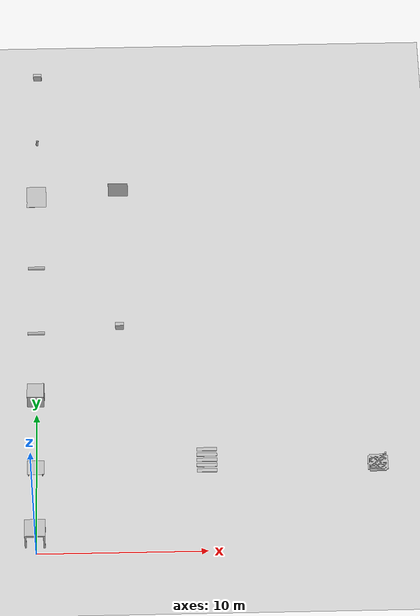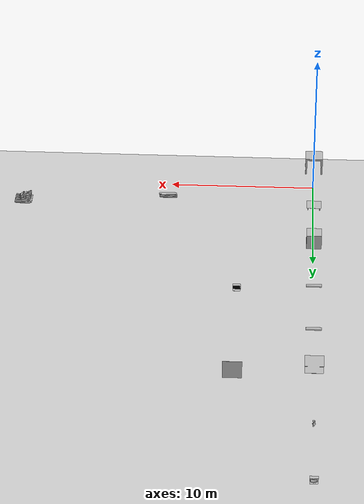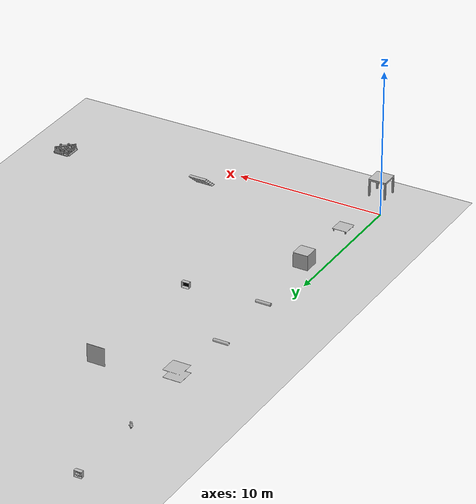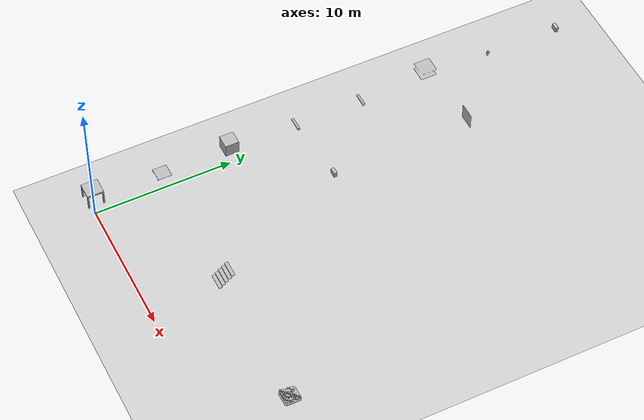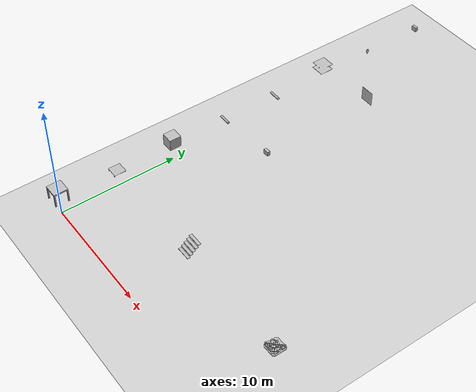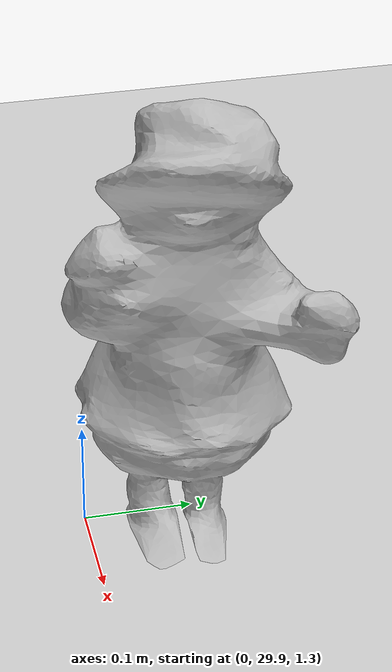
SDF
<sdf version="1.4">
 <world name="default">
  <scene><ambient>0.5 0.5 0.5 1</ambient><background>0.5 0.5 0.5 1</background><shadows>false</shadows></scene>
  <include><uri>model://sun</uri></include>
  <physics type="ode">
   <max_step_size>0.001</max_step_size>
   <real_time_factor>1</real_time_factor>
   <real_time_update_rate>1000</real_time_update_rate>
   <gravity>0 0 -9.81</gravity>
  </physics>
  <light type="directional" name="directional_light_1">
   <cast_shadows>false</cast_shadows>
   <pose>0 0 30 0.1 0.1 0</pose>
   <diffuse>.5 .5 .5 1</diffuse>
   <specular>.1 .1 .1 1</specular>
   <attenuation><range>300</range></attenuation>
   <direction>0.1 0.1 -1</direction>
  </light>
  <model name="plane">
   <static>true</static>
   <link name="plane_link">
    <collision name="plane_collision">
     <geometry><plane><normal>0 0 1</normal><size>100 100</size></plane></geometry>
     <surface>
      <friction>
       <ode><mu>10.0</mu><mu2>10.0</mu2><fdir1>0 0 0</fdir1><slip1>0</slip1><slip2>0</slip2></ode>
      </friction>
      <bounce><restitution_coefficient>0</restitution_coefficient><threshold>1000000.0</threshold></bounce>
      <contact>
       <ode>
        <soft_cfm>0</soft_cfm>
        <soft_erp>0.2</soft_erp>
        <kp>1e10</kp>
        <kd>1</kd>
        <max_vel>100.0</max_vel>
        <min_depth>0.0001</min_depth>
       </ode>
      </contact>
     </surface>
    </collision>
    <visual name="plane_visual">
     <cast_shadows>false</cast_shadows>
     <geometry><plane><normal>0 0 1</normal><size>100 100</size></plane></geometry>
     <material><script>Gazebo/Grey</script></material>
    </visual>
   </link>
  </model>
  <model name="elevated_floor_120">
   <static>true</static>
   <link name="elevated_floor_120_link">
    <pose>0 0 1.5 0 0 0</pose>
    <collision name="elevated_floor_120_collision">
     <geometry><mesh><uri>file://floors/elevated_floor_120.dae</uri><scale>1 1 1</scale></mesh></geometry>
    </collision>
    <visual name="elevated_floor_120_visual">
     <cast_shadows>false</cast_shadows>
     <geometry><mesh><uri>file://floors/elevated_floor_120.dae</uri><scale>1 1 1</scale></mesh></geometry>
    </visual>
   </link>
  </model>
  <model name="semi_elevated_floor">
   <static>true</static>
   <link name="semi_elevated_floor_link">
    <pose>0 5 1.5 0 0 0</pose>
    <collision name="semi_elevated_floor_collision">
     <geometry><mesh><uri>file://floors/semi_elevated_floor.dae</uri><scale>1 1 1</scale></mesh></geometry>
    </collision>
    <visual name="semi_elevated_floor_visual">
     <cast_shadows>false</cast_shadows>
     <geometry><mesh><uri>file://floors/semi_elevated_floor.dae</uri><scale>1 1 1</scale></mesh></geometry>
    </visual>
   </link>
  </model>
  <model name="box">
   <static>true</static>
   <link name="box_link">
    <pose>0 10 1.5 0 0 0</pose>
    <collision name="box_collision">
     <geometry><mesh><uri>file://various/box.dae</uri><scale>1 1 1</scale></mesh></geometry>
    </collision>
    <visual name="box_visual">
     <cast_shadows>false</cast_shadows>
     <geometry><mesh><uri>file://various/box.dae</uri><scale>1 1 1</scale></mesh></geometry>
    </visual>
   </link>
  </model>
  <model name="cylinder">
   <static>true</static>
   <link name="cylinder_link">
    <pose>0 15 1.5 0 0 0</pose>
    <collision name="cylinder_collision">
     <geometry><mesh><uri>file://various/cylinder.dae</uri><scale>1 1 1</scale></mesh></geometry>
    </collision>
    <visual name="cylinder_visual">
     <cast_shadows>false</cast_shadows>
     <geometry><mesh><uri>file://various/cylinder.dae</uri><scale>1 1 1</scale></mesh></geometry>
    </visual>
   </link>
  </model>
  <model name="pipe">
   <static>true</static>
   <link name="pipe_link">
    <pose>0 20 1.5 0 0 0</pose>
    <collision name="pipe_collision">
     <geometry><mesh><uri>file://various/pipe.dae</uri><scale>1 1 1</scale></mesh></geometry>
    </collision>
    <visual name="pipe_visual">
     <cast_shadows>false</cast_shadows>
     <geometry><mesh><uri>file://various/pipe.dae</uri><scale>1 1 1</scale></mesh></geometry>
    </visual>
   </link>
  </model>
  <model name="manip_storage">
   <static>true</static>
   <link name="manip_storage_link">
    <pose>0 25 1.5 0 0 0</pose>
    <collision name="manip_storage_collision">
     <geometry><mesh><uri>file://various/manip_storage.dae</uri><scale>1 1 1</scale></mesh></geometry>
    </collision>
    <visual name="manip_storage_visual">
     <cast_shadows>false</cast_shadows>
     <geometry><mesh><uri>file://various/manip_storage.dae</uri><scale>1 1 1</scale></mesh></geometry>
    </visual>
   </link>
  </model>
  <model name="victim">
   <static>true</static>
   <link name="victim_link">
    <pose>0 30 1.5 0 0 0</pose>
    <collision name="victim_collision">
     <geometry><mesh><uri>file://various/victim.dae</uri><scale>1 1 1</scale></mesh></geometry>
    </collision>
    <visual name="victim_visual">
     <cast_shadows>false</cast_shadows>
     <geometry><mesh><uri>file://various/victim.dae</uri><scale>1 1 1</scale></mesh></geometry>
    </visual>
   </link>
  </model>
  <model name="victim_inside_box">
   <static>true</static>
   <link name="victim_inside_box_link">
    <pose>0 35 1.5 0 0 0</pose>
    <collision name="victim_inside_box_collision">
     <geometry><mesh><uri>file://various/victim_inside_box.dae</uri><scale>1 1 1</scale></mesh></geometry>
    </collision>
    <visual name="victim_inside_box_visual">
     <cast_shadows>false</cast_shadows>
     <geometry><mesh><uri>file://various/victim_inside_box.dae</uri><scale>1 1 1</scale></mesh></geometry>
    </visual>
   </link>
  </model>
  <model name="stairs_120">
   <static>true</static>
   <link name="stairs_120_link">
    <pose>10 5 1.5 0 0 0</pose>
    <collision name="stairs_120_collision">
     <geometry><mesh><uri>file://robocup/other/stairs_120.dae</uri><scale>1 1 1</scale></mesh></geometry>
    </collision>
    <visual name="stairs_120_visual">
     <cast_shadows>false</cast_shadows>
     <geometry><mesh><uri>file://robocup/other/stairs_120.dae</uri><scale>1 1 1</scale></mesh></geometry>
    </visual>
   </link>
  </model>
  <model name="stepfield_red_diagonal">
   <static>true</static>
   <link name="stepfield_red_diagonal_link">
    <pose>20 5 1.5 0 0 0</pose>
    <collision name="stepfield_red_diagonal_collision">
     <geometry>
      <mesh><uri>file://robocup/other/stepfield_red_diagonal.dae</uri><scale>1 1 1</scale></mesh>
     </geometry>
    </collision>
    <visual name="stepfield_red_diagonal_visual">
     <cast_shadows>false</cast_shadows>
     <geometry>
      <mesh><uri>file://robocup/other/stepfield_red_diagonal.dae</uri><scale>1 1 1</scale></mesh>
     </geometry>
    </visual>
   </link>
  </model>
  <model name="victim-with-box1">
   <static>true</static>
   <link name="victim-with-box1_link">
    <pose>5 15 1.5 0 0 0</pose>
    <collision name="victim-with-box1_collision">
     <geometry><mesh><uri>file://robocup/victims/victim-with-box1.dae</uri><scale>1 1 1</scale></mesh></geometry>
    </collision>
    <visual name="victim-with-box1_visual">
     <cast_shadows>false</cast_shadows>
     <geometry><mesh><uri>file://robocup/victims/victim-with-box1.dae</uri><scale>1 1 1</scale></mesh></geometry>
    </visual>
   </link>
  </model>
  <model name="small_wall_qr3">
   <static>true</static>
   <link name="small_wall_qr3_link">
    <pose>5 25 1.5 0 0 0</pose>
    <collision name="small_wall_qr3_collision">
     <geometry><mesh><uri>file://robocup/walls/small_wall_qr3.dae</uri><scale>1 1 1</scale></mesh></geometry>
    </collision>
    <visual name="small_wall_qr3_visual">
     <cast_shadows>false</cast_shadows>
     <geometry><mesh><uri>file://robocup/walls/small_wall_qr3.dae</uri><scale>1 1 1</scale></mesh></geometry>
    </visual>
   </link>
  </model>
 </world>
</sdf>
